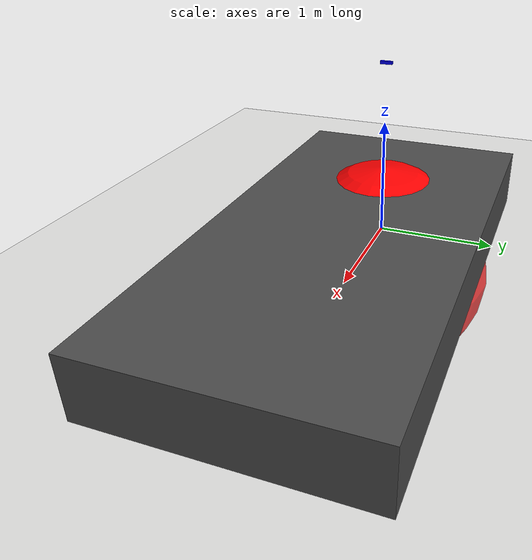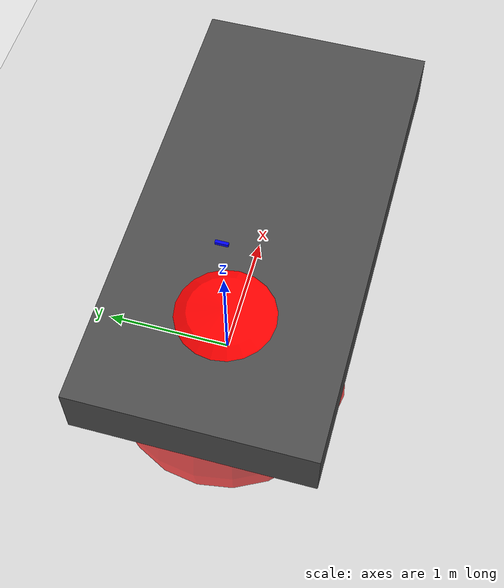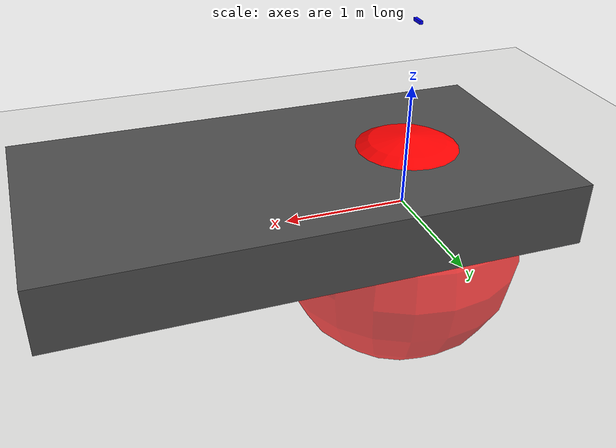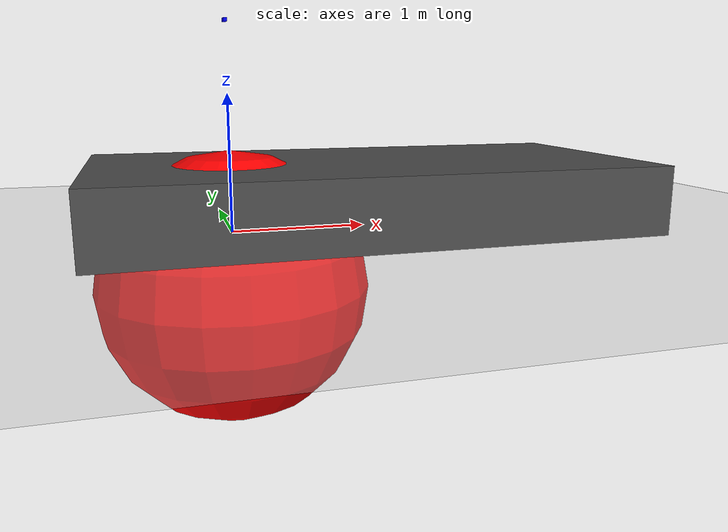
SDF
<?xml version="1.0" ?>
<sdf version="1.6">
  <world name="realsense_world">
    <physics name="1ms" type="ignored">
      <max_step_size>0.001</max_step_size>
      <real_time_factor>1.0</real_time_factor>
    </physics>
    <plugin
      filename="libignition-gazebo-physics-system.so"
      name="ignition::gazebo::systems::Physics">
    </plugin>
    <plugin
      filename="libignition-gazebo-sensors-system.so"
      name="ignition::gazebo::systems::Sensors">
      <render_engine>ogre2</render_engine>
    </plugin>
    <plugin
      filename="libignition-gazebo-scene-broadcaster-system.so"
      name="ignition::gazebo::systems::SceneBroadcaster">
    </plugin>

    <light type="directional" name="sun">
      <cast_shadows>true</cast_shadows>
      <pose>0 0 10 0 0 0</pose>
      <diffuse>0.8 0.8 0.8 1</diffuse>
      <specular>0.2 0.2 0.2 1</specular>
      <attenuation>
        <range>1000</range>
        <constant>0.9</constant>
        <linear>0.01</linear>
        <quadratic>0.001</quadratic>
      </attenuation>
      <direction>0.0 0.0 0.0</direction>
    </light>

    <model name="ground_plane">
      <static>true</static>
      <link name="link">
        <collision name="collision">
          <geometry><plane><normal>0 0 1</normal><size>100 100</size></plane></geometry>
        </collision>
        <visual name="visual">
          <geometry><plane><normal>0 0 1</normal><size>100 100</size></plane></geometry>
          <material><ambient>0.8 0.8 0.8 1</ambient><diffuse>0.8 0.8 0.8 1</diffuse></material>
        </visual>
      </link>
    </model>

    <model name="table">
      <static>true</static>
      <pose>1 0 0.25 0 0 0</pose> <link name="link">
        <collision name="collision">
          <geometry><box><size>4.0 2.0 0.5</size></box></geometry>
        </collision>
        <visual name="visual">
          <geometry><box><size>4.0 2.0 0.5</size></box></geometry>
          <material><ambient>0.3 0.3 0.3 1</ambient><diffuse>0.3 0.3 0.3 1</diffuse></material>
        </visual>
      </link>
    </model>

    <model name="sphere">
      <static>true</static>
      <pose>0 0 -0.4 0 0 0</pose>
      <link name="link">
        <collision name="collision">
          <geometry><sphere><radius>1.0</radius></sphere></geometry>
        </collision>
        <visual name="visual">
          <geometry><sphere><radius>1.0</radius></sphere></geometry>
          <material><ambient>1 0 0 1</ambient><diffuse>1 0 0 1</diffuse></material>
        </visual>
      </link>
    </model>

    <model name="realsense_camera">
      <static>true</static>
      <pose>0 0 1.5 0 1.5708 0</pose> <link name="link">
        <visual name="visual">
          <geometry><box><size>0.025 0.1 0.025</size></box></geometry>
          <material><ambient>0 0 1 1</ambient><diffuse>0 0 1 1</diffuse></material>
        </visual>

        <sensor name="realsense_d435" type="rgbd_camera">
          <topic>realsense</topic>
          <update_rate>30</update_rate>
          <always_on>1</always_on>
          <visualize>true</visualize>
          <camera>
            <horizontal_fov>1.50098</horizontal_fov> <image>
              <width>640</width>
              <height>480</height>
              <format>R8G8B8</format>
            </image>
            <clip>
              <near>0.1</near>
              <far>10.0</far>
            </clip>
            <depth_camera>
              <output>depths</output>
            </depth_camera>
          </camera>
        </sensor>
      </link>
    </model>

  </world>
</sdf>
